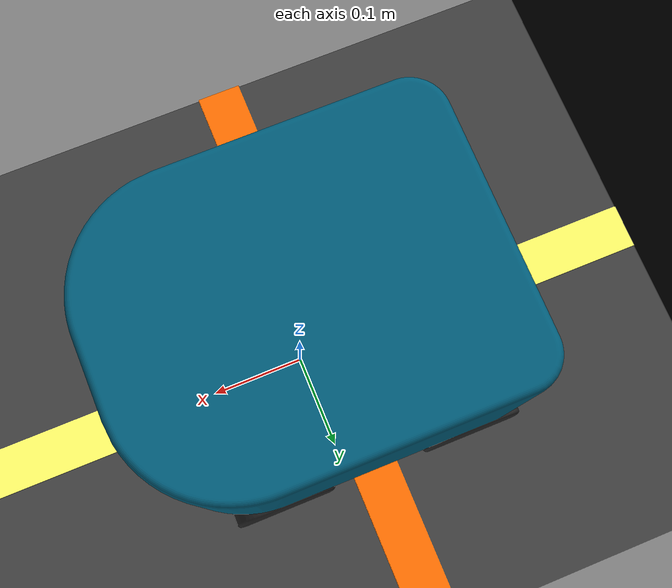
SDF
<?xml version="1.6" encoding="utf-8"?>
<sdf version="1.4">
  <world name="default">
    <gui>
      <camera name="default_camera">
        <pose>0.265873 1.353024 4.355823 0 1.223661 0</pose>
      </camera>
    </gui>

    <!-- A global light source -->
    <include>
      <uri>model://sun</uri>
    </include>

    <light name='user_point_light_4' type='point'>
      <pose frame=''>2.0 -3.0 2 0 -0 0</pose>
      <diffuse>0.3 0.3 0.3 1</diffuse>
      <specular>0.1 0.1 0.1 1</specular>
      <attenuation>
        <range>20</range>
        <constant>0.5</constant>
        <linear>0.01</linear>
        <quadratic>0.001</quadratic>
      </attenuation>
      <cast_shadows>0</cast_shadows>
      <direction>0 0 -1</direction>
    </light>

    <include>
      <uri>model://models/playroom_v2</uri>
      <pose>3.6 0.42 -0.1 0 0 0</pose>
      <name>playroom</name>
    </include>

		<include>
			<uri>model://ground_plane</uri>
		</include>

    <physics type="ode">
      <real_time_update_rate>1000.0</real_time_update_rate>
      <max_step_size>0.001</max_step_size>
      <real_time_factor>1</real_time_factor>
      <ode>
        <solver>
          <type>quick</type>
          <iters>150</iters>
          <precon_iters>0</precon_iters>
          <sor>1.400000</sor>
          <use_dynamic_moi_rescaling>1</use_dynamic_moi_rescaling>
        </solver>
        <constraints>
          <cfm>0.00001</cfm>
          <erp>0.2</erp>
          <contact_max_correcting_vel>2000.000000</contact_max_correcting_vel>
          <contact_surface_layer>0.01000</contact_surface_layer>
        </constraints>
      </ode>
    </physics>
    <scene>
        <ambient>1 1 1 1</ambient>
        <background>0.7 0.7 0.7 1</background>
        <shadows>false</shadows>
    </scene>

<model name="dynamic_object1">
  <include>
    <uri>model://models/dynamic_object</uri>
  </include>
  <plugin name="pose_animation_plugin" filename="libpose_animation_plugin.so">
    <total_time>45.0</total_time>
    <repeat>true</repeat>
    <key1>
      <time>0.0</time>
      <pose>4.53 0.44 0.03 0 0 1.5707963267948966</pose>
    </key1>
    <key2>
      <time>3.75</time>
      <pose>4.402724133595217 0.9149999999999999 0.03 0 0 2.0943951023931953</pose>
    </key2>
    <key3>
      <time>7.5</time>
      <pose>4.055 1.2627241335952166 0.03 0 0 2.617993877991494</pose>
    </key3>
    <key4>
      <time>11.25</time>
      <pose>3.58 1.39 0.03 0 0 3.141592653589793</pose>
    </key4>
    <key5>
      <time>15.0</time>
      <pose>3.1050000000000004 1.2627241335952168 0.03 0 0 3.665191429188092</pose>
    </key5>
    <key6>
      <time>18.75</time>
      <pose>2.7572758664047834 0.9150000000000003 0.03 0 0 4.1887902047863905</pose>
    </key6>
    <key7>
      <time>22.5</time>
      <pose>2.63 0.4400000000000001 0.03 0 0 4.71238898038469</pose>
    </key7>
    <key8>
      <time>26.25</time>
      <pose>2.7572758664047834 -0.0349999999999997 0.03 0 0 5.235987755982988</pose>
    </key8>
    <key9>
      <time>30.0</time>
      <pose>3.1049999999999995 -0.38272413359521645 0.03 0 0 5.759586531581287</pose>
    </key9>
    <key10>
      <time>33.75</time>
      <pose>3.58 -0.51 0.03 0 0 6.283185307179586</pose>
    </key10>
    <key11>
      <time>37.5</time>
      <pose>4.055 -0.382724133595217 0.03 0 0 6.8067840827778845</pose>
    </key11>
    <key12>
      <time>41.25</time>
      <pose>4.402724133595217 -0.03500000000000042 0.03 0 0 7.330382858376184</pose>
    </key12>
    <key13>
      <time>45.0</time>
      <pose>4.53 0.4399999999999998 0.03 0 0 7.853981633974483</pose>
    </key13>
  </plugin>
</model>
<model name="dynamic_object2">
  <include>
    <uri>model://models/dynamic_object</uri>
  </include>
  <plugin name="pose_animation_plugin" filename="libpose_animation_plugin.so">
    <total_time>45.0</total_time>
    <repeat>true</repeat>
    <key1>
      <time>0.0</time>
      <pose>2.63 0.4400000000000001 0.03 0 0 4.71238898038469</pose>
    </key1>
    <key2>
      <time>3.75</time>
      <pose>2.7572758664047834 -0.0349999999999997 0.03 0 0 5.235987755982988</pose>
    </key2>
    <key3>
      <time>7.5</time>
      <pose>3.1049999999999995 -0.38272413359521645 0.03 0 0 5.759586531581287</pose>
    </key3>
    <key4>
      <time>11.25</time>
      <pose>3.58 -0.51 0.03 0 0 6.283185307179586</pose>
    </key4>
    <key5>
      <time>15.0</time>
      <pose>4.055 -0.382724133595217 0.03 0 0 6.8067840827778845</pose>
    </key5>
    <key6>
      <time>18.75</time>
      <pose>4.402724133595217 -0.03500000000000042 0.03 0 0 7.330382858376184</pose>
    </key6>
    <key7>
      <time>22.5</time>
      <pose>4.53 0.4399999999999998 0.03 0 0 7.853981633974483</pose>
    </key7>
    <key8>
      <time>26.25</time>
      <pose>4.402724133595217 0.9149999999999994 0.03 0 0 8.377580409572781</pose>
    </key8>
    <key9>
      <time>30.0</time>
      <pose>4.055000000000001 1.2627241335952164 0.03 0 0 8.901179185171081</pose>
    </key9>
    <key10>
      <time>33.75</time>
      <pose>3.5800000000000005 1.39 0.03 0 0 9.42477796076938</pose>
    </key10>
    <key11>
      <time>37.5</time>
      <pose>3.105000000000001 1.262724133595217 0.03 0 0 9.948376736367678</pose>
    </key11>
    <key12>
      <time>41.25</time>
      <pose>2.7572758664047834 0.9149999999999998 0.03 0 0 10.471975511965978</pose>
    </key12>
    <key13>
      <time>45.0</time>
      <pose>2.63 0.44000000000000034 0.03 0 0 10.995574287564276</pose>
    </key13>
  </plugin>
</model>

<model name="dynamic_object3">
  <include>
    <uri>model://models/dynamic_object</uri>
  </include>
  <plugin name="pose_animation_plugin" filename="libpose_animation_plugin.so">
    <total_time>35.0</total_time>
    <repeat>true</repeat>
    <key1>
      <time>0.0</time>
      <pose>0.60 -0.85 0 0 0 4.71</pose>
    </key1>
    <key2>
      <time>15</time>
      <pose>0.60 -0.85 0 0 0 4.71</pose>
    </key2>
    <key3>
      <time>20</time>
      <pose>0.60 -1.36 0 0 0 4.71</pose>
    </key3>
    <key4>
      <time>30</time>
      <pose>0.60 -1.36 0 0 0 4.71</pose>
    </key4>
    <key5>
      <time>35</time>
      <pose>0.60 -0.85 0 0 0 4.71</pose>
    </key5>
  </plugin>
</model>

<model name="dynamic_object4">
  <include>
    <uri>model://models/dynamic_object</uri>
  </include>
  <plugin name="pose_animation_plugin" filename="libpose_animation_plugin.so">
    <total_time>35.0</total_time>
    <repeat>true</repeat>
    <key1>
      <time>0.0</time>
      <pose>6.60 1.68 0 0 0 1.57</pose>
    </key1>
    <key2>
      <time>15</time>
      <pose>6.60 1.68 0 0 0 1.57</pose>
    </key2>
    <key3>
      <time>20</time>
      <pose>6.60 2.19 0 0 0 1.57</pose>
    </key3>
    <key4>
      <time>30</time>
      <pose>6.60 2.19 0 0 0 1.57</pose>
    </key4>
    <key5>
      <time>35</time>
      <pose>6.60 1.68 0 0 0 1.57</pose>
    </key5>
  </plugin>
</model>

    <!--      Define the trajectory here.-->

    <!--      Format:-->

    <!--      Example:-->

  </world>
</sdf>

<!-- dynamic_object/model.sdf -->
<sdf version='1.6'>
  <model name='dynamic_object'>
    <link name='link_1'>
      <inertial>
        <mass>1</mass>
        <inertia>
          <ixx>0.166667</ixx>
          <ixy>0</ixy>
          <ixz>0</ixz>
          <iyy>0.166667</iyy>
          <iyz>0</iyz>
          <izz>0.166667</izz>
        </inertia>
      </inertial>
      <pose frame=''>-3e-06 0 0 0 -0 0</pose>
      <visual name='visual'>
        <pose frame=''>0 0 0 0 -0 0</pose>
        <geometry>
          <mesh>
            <uri>file://dynamic_object/meshes/dynamic_object.dae</uri>
            <scale>0.73 0.73 0.73</scale>
          </mesh>
        </geometry>
      </visual>
      <collision name='collision'>
        <laser_retro>0</laser_retro>
        <max_contacts>10</max_contacts>
        <pose frame=''>0 0 0 0 -0 0</pose>
        <geometry>
          <mesh>
            <uri>file://dynamic_object/meshes/dynamic_object.dae</uri>
            <scale>0.73 0.73 0.73</scale>
          </mesh>
        </geometry>
        <surface>
          <friction>
            <ode>
              <mu>1</mu>
              <mu2>1</mu2>
              <fdir1>0 0 0</fdir1>
              <slip1>0</slip1>
              <slip2>0</slip2>
            </ode>
            <torsional>
              <coefficient>1</coefficient>
              <patch_radius>0</patch_radius>
              <surface_radius>0</surface_radius>
              <use_patch_radius>1</use_patch_radius>
              <ode>
                <slip>0</slip>
              </ode>
            </torsional>
          </friction>
          <bounce>
            <restitution_coefficient>0</restitution_coefficient>
            <threshold>1e+06</threshold>
          </bounce>
          <contact>
            <collide_without_contact>0</collide_without_contact>
            <collide_without_contact_bitmask>1</collide_without_contact_bitmask>
            <collide_bitmask>1</collide_bitmask>
            <ode>
              <soft_cfm>0</soft_cfm>
              <soft_erp>0.2</soft_erp>
              <kp>1e+13</kp>
              <kd>1</kd>
              <max_vel>0.01</max_vel>
              <min_depth>0</min_depth>
            </ode>
            <bullet>
              <split_impulse>1</split_impulse>
              <split_impulse_penetration_threshold>-0.01</split_impulse_penetration_threshold>
              <soft_cfm>0</soft_cfm>
              <soft_erp>0.2</soft_erp>
              <kp>1e+13</kp>
              <kd>1</kd>
            </bullet>
          </contact>
        </surface>
      </collision>
    </link>
    <static>1</static>
    <allow_auto_disable>1</allow_auto_disable>
  </model>
</sdf>

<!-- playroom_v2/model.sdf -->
<sdf version='1.4'>
  <model name="hard_track">
    <link name="link">
      <collision name="collision">
        <geometry>
          <mesh>
            <uri>file://playroom_v2/meshes/collision_wall.stl</uri>
            <scale>0.001 0.001 0.001</scale>
          </mesh>
        </geometry>
      </collision>
      <visual name="visual">
        <geometry>
          <mesh>
            <uri>file://playroom_v2/meshes/visual_v5.dae</uri>
          </mesh>
        </geometry>
      </visual>
    </link>
    <static>1</static>
  </model>
</sdf>
